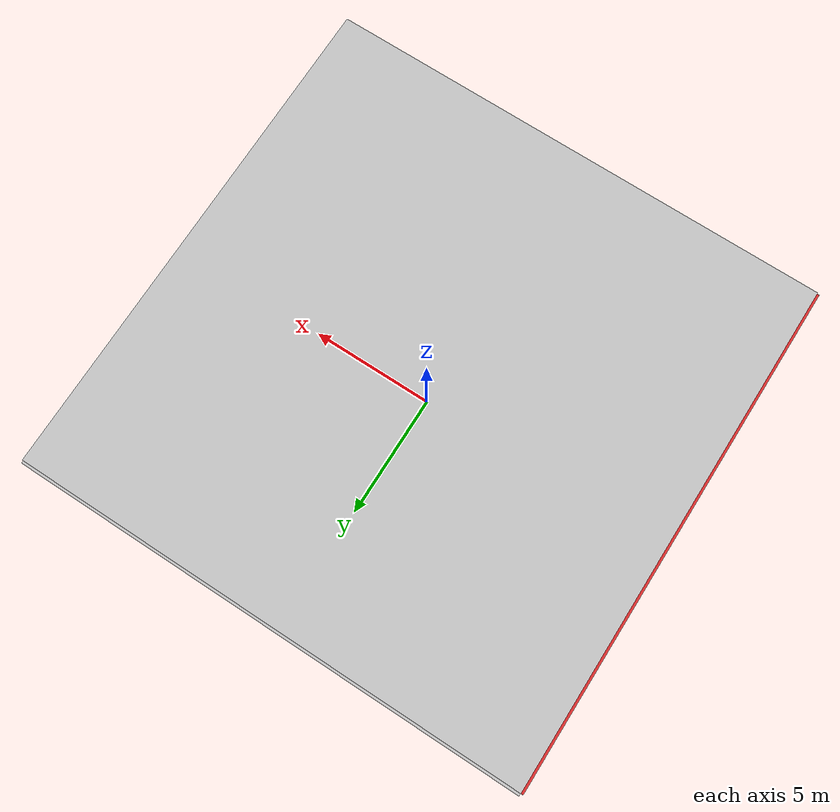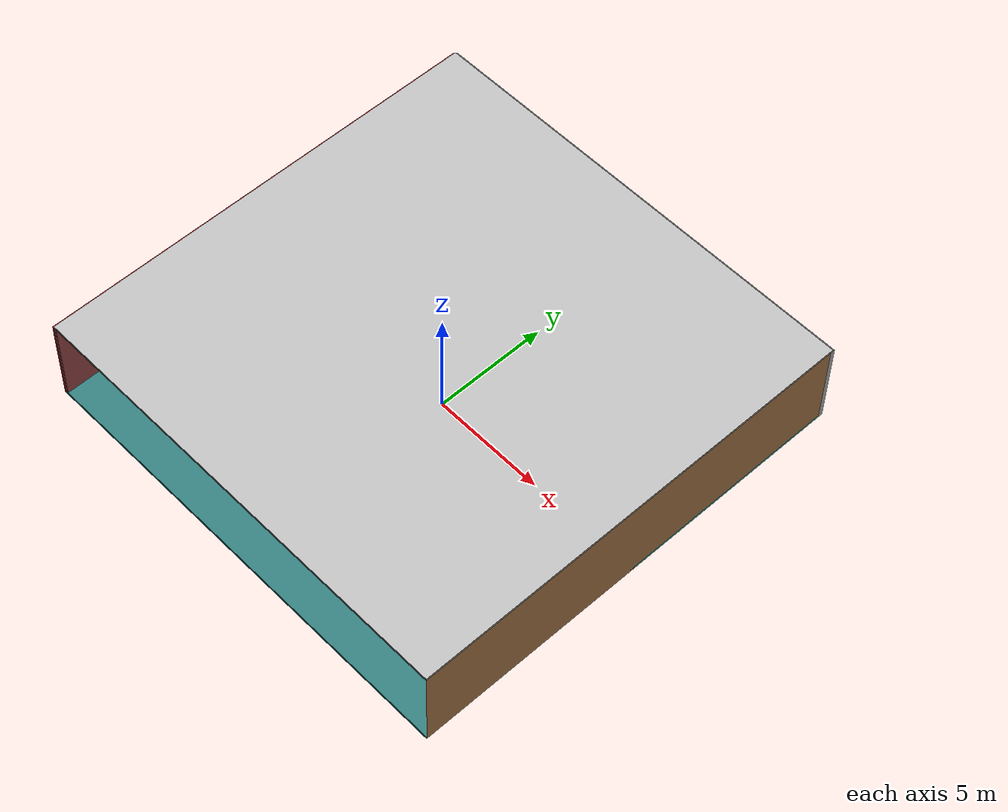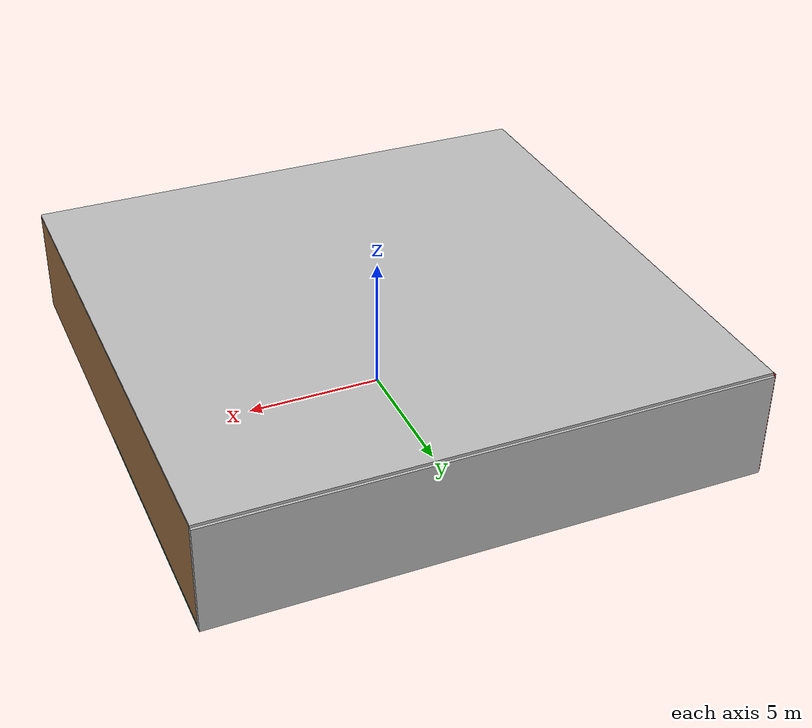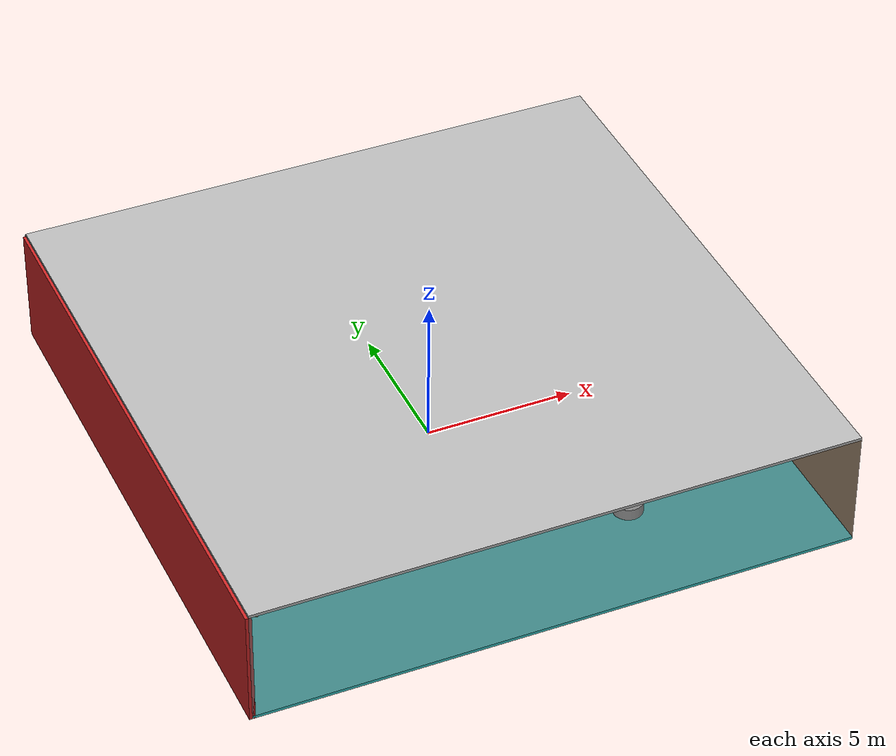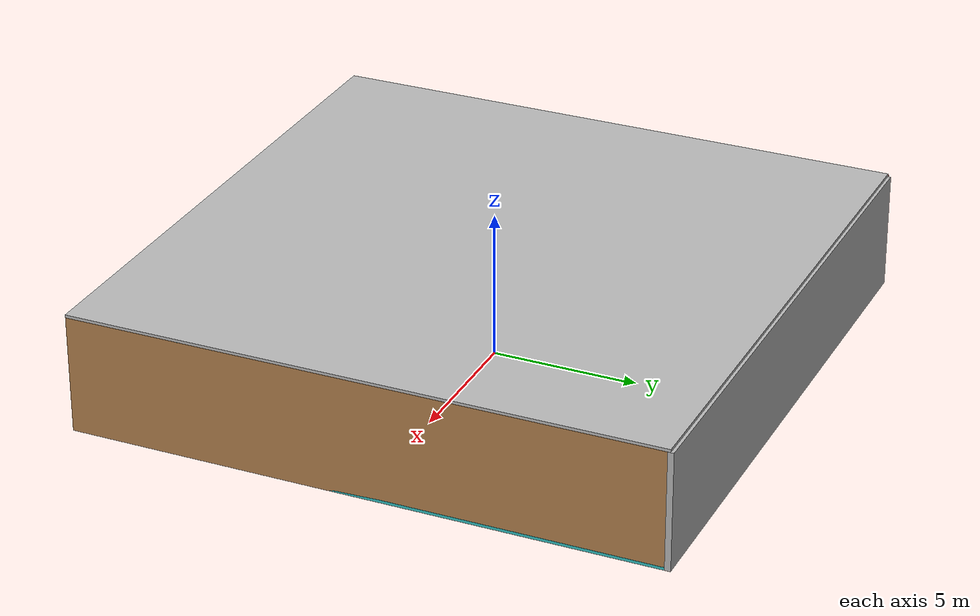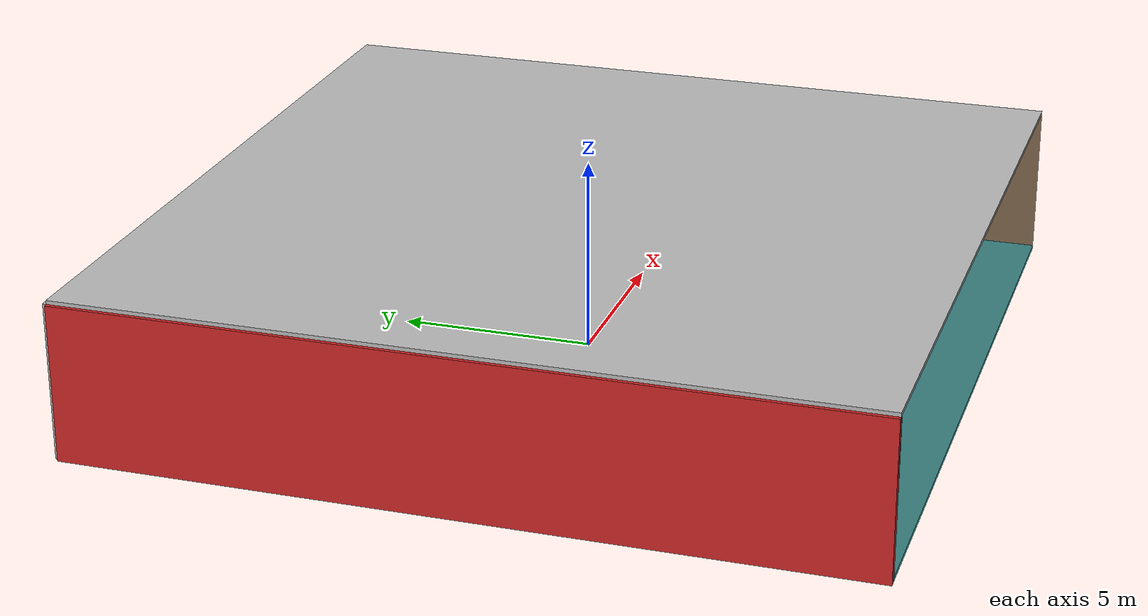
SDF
<sdf version="1.4">
 <world name="default">
  <physics type="ode">
   <max_step_size>0.001</max_step_size>
   <real_time_factor>1</real_time_factor>
   <real_time_update_rate>1000</real_time_update_rate>
   <gravity>0 0 -9.8</gravity>
  </physics>
  <scene><ambient>0.4 0.4 0.4 1</ambient><background>0.7 0.7 0.7 1</background><shadows>1</shadows></scene>
  <model name="Surrounding">
   <static>1</static>
   <link name="Ceiling">
    <collision name="Ceiling_Collision"><geometry><box><size>20 20 0.1</size></box></geometry></collision>
    <visual name="Ceiling_Visual">
     <geometry><box><size>20 20 0.1</size></box></geometry>
     <material>
      <script><uri>file://media/materials/scripts/gazebo.material</uri><name>Gazebo/LightOn</name></script>
     </material>
    </visual>
    <pose>0 0 4.05 0 0 0</pose>
   </link>
   <link name="Wall_South">
    <collision name="Wall_South_Collision">
     <geometry><box><size>20 0 4</size></box></geometry>
     <pose>0 0 2 0 -0 0</pose>
    </collision>
    <visual name="Wall_South_Visual">
     <pose>0 0 2 0 -0 0</pose>
     <geometry><box><size>20 0 4</size></box></geometry>
     <material>
      <script><uri>file://media/materials/scripts/gazebo.material</uri><name>Gazebo/GreyTransparent</name></script>
     </material>
    </visual>
    <velocity_decay><linear>0</linear><angular>0</angular></velocity_decay>
    <pose>0 -10 0 0 -0 0</pose>
   </link>
   <link name="Wall_East">
    <collision name="Wall_21_Collision">
     <geometry><box><size>20 0 4</size></box></geometry>
     <pose>0 0 2 0 -0 0</pose>
    </collision>
    <visual name="Wall_21_Visual">
     <pose>0 0 2 0 -0 0</pose>
     <geometry><box><size>20 0 4</size></box></geometry>
     <material>
      <script><uri>file://media/materials/scripts/gazebo.material</uri><name>Gazebo/Wood</name></script>
     </material>
    </visual>
    <velocity_decay><linear>0</linear><angular>0</angular></velocity_decay>
    <pose>10 0 0 0 -0 1.5708</pose>
   </link>
   <link name="Wall_North">
    <collision name="Wall_22_Collision">
     <geometry><box><size>20 0.2 4</size></box></geometry>
     <pose>0 0 2 0 -0 0</pose>
    </collision>
    <visual name="Wall_22_Visual">
     <pose>0 0 2 0 -0 0</pose>
     <geometry><box><size>20 0.2 4</size></box></geometry>
     <material>
      <script><uri>file://media/materials/scripts/gazebo.material</uri><name>Gazebo/JointAnchor</name></script>
     </material>
    </visual>
    <velocity_decay><linear>0</linear><angular>0</angular></velocity_decay>
    <pose>0 10 0 0 -0 0</pose>
   </link>
   <link name="Wall_West">
    <collision name="Wall_23_Collision">
     <geometry><box><size>20 0.2 4</size></box></geometry>
     <pose>0 0 2 0 -0 0</pose>
    </collision>
    <visual name="Wall_23_Visual">
     <pose>0 0 2 0 -0 0</pose>
     <geometry><box><size>20 0.2 4</size></box></geometry>
     <material>
      <script><uri>file://media/materials/scripts/gazebo.material</uri><name>Gazebo/RedGlow</name></script>
     </material>
    </visual>
    <velocity_decay><linear>0</linear><angular>0</angular></velocity_decay>
    <pose>-10 0 0 0 0 -1.5708</pose>
   </link>
   <link name="Ground_link">
    <collision name="collision">
     <pose>0 0 .05 0 -0 0</pose>
     <geometry><box><size>20 20 0.1</size></box></geometry>
    </collision>
    <visual name="visual">
     <pose>0 0 .05 0 -0 0</pose>
     <geometry><box><size>20 20 0.1</size></box></geometry>
     <material>
      <script><uri>file://media/materials/scripts/gazebo.material</uri><name>Gazebo/TurquoiseGlow</name></script>
     </material>
    </visual>
   </link>
   <static>1</static>
  </model>
  <spherical_coordinates>
   <surface_model>EARTH_WGS84</surface_model>
   <latitude_deg>0</latitude_deg>
   <longitude_deg>0</longitude_deg>
   <elevation>0</elevation>
   <heading_deg>0</heading_deg>
  </spherical_coordinates>
  <light name="lightball_0" type="diffuse">
   <diffuse>0.8 0.8 0.8 1</diffuse>
   <specular>0.2 0.2 0.2 1</specular>
   <attenuation>
    <range>100</range>
    <constant>0.7</constant>
    <linear>0.01</linear>
    <quadratic>0.001</quadratic>
   </attenuation>
   <direction>-0.5 0.1 -0.9</direction>
   <pose>5.62636819706 -5.837250967 1.11624636809 0 0 0</pose>
  </light>
  <light name="lightball_1" type="diffuse">
   <diffuse>0.8 0.8 0.8 1</diffuse>
   <specular>0.2 0.2 0.2 1</specular>
   <attenuation>
    <range>100</range>
    <constant>0.7</constant>
    <linear>0.01</linear>
    <quadratic>0.001</quadratic>
   </attenuation>
   <direction>-0.5 0.1 -0.9</direction>
   <pose>-2.88742028713 -1.7508925562 3.73414804324 0 0 0</pose>
  </light>
  <light name="lightball_2" type="diffuse">
   <diffuse>0.8 0.8 0.8 1</diffuse>
   <specular>0.2 0.2 0.2 1</specular>
   <attenuation>
    <range>100</range>
    <constant>0.7</constant>
    <linear>0.01</linear>
    <quadratic>0.001</quadratic>
   </attenuation>
   <direction>-0.5 0.1 -0.9</direction>
   <pose>7.50162340116 -2.48547958239 2.57246223099 0 0 0</pose>
  </light>
  <light name="lightball_3" type="diffuse">
   <diffuse>0.8 0.8 0.8 1</diffuse>
   <specular>0.2 0.2 0.2 1</specular>
   <attenuation>
    <range>100</range>
    <constant>0.7</constant>
    <linear>0.01</linear>
    <quadratic>0.001</quadratic>
   </attenuation>
   <direction>-0.5 0.1 -0.9</direction>
   <pose>8.51672926823 2.53904514203 3.24264227491 0 0 0</pose>
  </light>
  <light name="lightball_4" type="diffuse">
   <diffuse>0.8 0.8 0.8 1</diffuse>
   <specular>0.2 0.2 0.2 1</specular>
   <attenuation>
    <range>100</range>
    <constant>0.7</constant>
    <linear>0.01</linear>
    <quadratic>0.001</quadratic>
   </attenuation>
   <direction>-0.5 0.1 -0.9</direction>
   <pose>5.94762330556 6.29243176417 3.88495357268 0 0 0</pose>
  </light>
  <light name="lightball_5" type="diffuse">
   <diffuse>0.8 0.8 0.8 1</diffuse>
   <specular>0.2 0.2 0.2 1</specular>
   <attenuation>
    <range>100</range>
    <constant>0.7</constant>
    <linear>0.01</linear>
    <quadratic>0.001</quadratic>
   </attenuation>
   <direction>-0.5 0.1 -0.9</direction>
   <pose>-0.800175357091 -6.74974832357 3.35690313164 0 0 0</pose>
  </light>
  <light name="lightball_6" type="diffuse">
   <diffuse>0.8 0.8 0.8 1</diffuse>
   <specular>0.2 0.2 0.2 1</specular>
   <attenuation>
    <range>100</range>
    <constant>0.7</constant>
    <linear>0.01</linear>
    <quadratic>0.001</quadratic>
   </attenuation>
   <direction>-0.5 0.1 -0.9</direction>
   <pose>5.92575742899 -4.74646127446 2.05636161145 0 0 0</pose>
  </light>
  <light name="lightball_7" type="diffuse">
   <diffuse>0.8 0.8 0.8 1</diffuse>
   <specular>0.2 0.2 0.2 1</specular>
   <attenuation>
    <range>100</range>
    <constant>0.7</constant>
    <linear>0.01</linear>
    <quadratic>0.001</quadratic>
   </attenuation>
   <direction>-0.5 0.1 -0.9</direction>
   <pose>5.06751963969 9.33274266191 3.77014540065 0 0 0</pose>
  </light>
  <light name="lightball_8" type="diffuse">
   <diffuse>0.8 0.8 0.8 1</diffuse>
   <specular>0.2 0.2 0.2 1</specular>
   <attenuation>
    <range>100</range>
    <constant>0.7</constant>
    <linear>0.01</linear>
    <quadratic>0.001</quadratic>
   </attenuation>
   <direction>-0.5 0.1 -0.9</direction>
   <pose>8.45145128566 -9.88976228183 2.64156046146 0 0 0</pose>
  </light>
  <light name="lightball_9" type="diffuse">
   <diffuse>0.8 0.8 0.8 1</diffuse>
   <specular>0.2 0.2 0.2 1</specular>
   <attenuation>
    <range>100</range>
    <constant>0.7</constant>
    <linear>0.01</linear>
    <quadratic>0.001</quadratic>
   </attenuation>
   <direction>-0.5 0.1 -0.9</direction>
   <pose>5.00861552702 -1.5533678486 2.00594774446 0 0 0</pose>
  </light>
  <light name="lightball_10" type="diffuse">
   <diffuse>0.8 0.8 0.8 1</diffuse>
   <specular>0.2 0.2 0.2 1</specular>
   <attenuation>
    <range>100</range>
    <constant>0.7</constant>
    <linear>0.01</linear>
    <quadratic>0.001</quadratic>
   </attenuation>
   <direction>-0.5 0.1 -0.9</direction>
   <pose>-5.05503103064 -9.74170756869 1.75266770832 0 0 0</pose>
  </light>
  <light name="lightball_11" type="diffuse">
   <diffuse>0.8 0.8 0.8 1</diffuse>
   <specular>0.2 0.2 0.2 1</specular>
   <attenuation>
    <range>100</range>
    <constant>0.7</constant>
    <linear>0.01</linear>
    <quadratic>0.001</quadratic>
   </attenuation>
   <direction>-0.5 0.1 -0.9</direction>
   <pose>2.33571657237 -8.03946981258 2.23538888702 0 0 0</pose>
  </light>
  <light name="lightball_12" type="diffuse">
   <diffuse>0.8 0.8 0.8 1</diffuse>
   <specular>0.2 0.2 0.2 1</specular>
   <attenuation>
    <range>100</range>
    <constant>0.7</constant>
    <linear>0.01</linear>
    <quadratic>0.001</quadratic>
   </attenuation>
   <direction>-0.5 0.1 -0.9</direction>
   <pose>4.31521103858 7.57958746842 1.43414037012 0 0 0</pose>
  </light>
  <include>
   <uri>model://robocup_3Dsim_goal</uri>
   <pose>-8.14358596772 -4.96427292893 0 0 0 2.98698966605</pose>
  </include>
  <include>
   <uri>model://textured_shapes</uri>
   <pose>-6.91627048994 7.85421959619 0 0 0 1.40698549261</pose>
  </include>
  <include>
   <uri>model://textured_shapes</uri>
   <pose>4.87174877693 -4.75103764194 0 0 0 2.64470788415</pose>
  </include>
 </world>
</sdf>

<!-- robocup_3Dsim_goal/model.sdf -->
<sdf version="1.5">
  <model name="robocup_3d_goal">
    <static>true</static>
    <link name="left_post">
      <pose>0 1.05 0.45 0 0 0</pose>
      <collision name="collision">
        <geometry>
          <cylinder>
            <radius>0.05</radius>
            <length>0.9</length>
          </cylinder>
        </geometry>
      </collision>
      <visual name="visual">
        <geometry>
          <cylinder>
            <radius>0.05</radius>
            <length>0.9</length>
          </cylinder>
        </geometry>
        <material>
          <script>
            <uri>file://media/materials/scripts/gazebo.material</uri>
            <name>Gazebo/ZincYellow</name>
          </script>
        </material>
      </visual>
    </link>
    <link name="left_support_horiz_lower">
      <pose>0.30 1.05 0.01 0 0 0</pose>
      <collision name="collision">
        <geometry>
          <box>
            <size>0.50 0.02 0.02</size>
          </box>
        </geometry>
      </collision>
      <visual name="visual">
        <geometry>
          <box>
            <size>0.50 0.02 0.02</size>
          </box>
        </geometry>
        <material>
          <script>
            <uri>file://media/materials/scripts/gazebo.material</uri>
            <name>Gazebo/White</name>
          </script>
        </material>
      </visual>
    </link>
    <link name="left_support_horiz_upper">
      <pose>0.30 1.05 0.79 0 0 0</pose>
      <collision name="collision">
        <geometry>
          <box>
            <size>0.50 0.02 0.02</size>
          </box>
        </geometry>
      </collision>
      <visual name="visual">
        <geometry>
          <box>
            <size>0.50 0.02 0.02</size>
          </box>
        </geometry>
        <material>
          <script>
            <uri>file://media/materials/scripts/gazebo.material</uri>
            <name>Gazebo/White</name>
          </script>
        </material>
      </visual>
    </link>
    <link name="left_support_vertical">
      <pose>0.56 1.05 0.4 0 1.5708 0</pose>
      <collision name="collision">
        <geometry>
          <box>
            <size>0.80 0.02 0.02</size>
          </box>
        </geometry>
      </collision>
      <visual name="visual">
        <geometry>
          <box>
            <size>0.80 0.02 0.02</size>
          </box>
        </geometry>
        <material>
          <script>
            <uri>file://media/materials/scripts/gazebo.material</uri>
            <name>Gazebo/White</name>
          </script>
        </material>
      </visual>
    </link>
    <link name="right_support_horiz_lower">
      <pose>0.30 -1.05 0.01 0 0 0</pose>
      <collision name="collision">
        <geometry>
          <box>
            <size>0.50 0.02 0.02</size>
          </box>
        </geometry>
      </collision>
      <visual name="visual">
        <geometry>
          <box>
            <size>0.50 0.02 0.02</size>
          </box>
        </geometry>
        <material>
          <script>
            <uri>file://media/materials/scripts/gazebo.material</uri>
            <name>Gazebo/White</name>
          </script>
        </material>
      </visual>
    </link>
    <link name="right_support_horiz_upper">
      <pose>0.30 -1.05 0.79 0 0 0</pose>
      <collision name="collision">
        <geometry>
          <box>
            <size>0.50 0.02 0.02</size>
          </box>
        </geometry>
      </collision>
      <visual name="visual">
        <geometry>
          <box>
            <size>0.50 0.02 0.02</size>
          </box>
        </geometry>
        <material>
          <script>
            <uri>file://media/materials/scripts/gazebo.material</uri>
            <name>Gazebo/White</name>
          </script>
        </material>
      </visual>
    </link>
    <link name="right_support_vertical">
      <pose>0.56 -1.05 0.4 0 1.5708 0</pose>
      <collision name="collision">
        <geometry>
          <box>
            <size>0.80 0.02 0.02</size>
          </box>
        </geometry>
      </collision>
      <visual name="visual">
        <geometry>
          <box>
            <size>0.80 0.02 0.02</size>
          </box>
        </geometry>
        <material>
          <script>
            <uri>file://media/materials/scripts/gazebo.material</uri>
            <name>Gazebo/White</name>
          </script>
        </material>
      </visual>
    </link>
    <link name="center_support_horiz_lower">
      <pose>0.56 0 0.01 0 1.5708 0</pose>
      <collision name="collision">
        <geometry>
          <box>
            <size>0.02 2.08 0.02</size>
          </box>
        </geometry>
      </collision>
      <visual name="visual">
        <geometry>
          <box>
            <size>0.02 2.08 0.02</size>
          </box>
        </geometry>
        <material>
          <script>
            <uri>file://media/materials/scripts/gazebo.material</uri>
            <name>Gazebo/White</name>
          </script>
        </material>
      </visual>
    </link>
    <link name="center_support_horiz_upper">
      <pose>0.56 0 0.79 0 1.5708 0</pose>
      <collision name="collision">
        <geometry>
          <box>
            <size>0.02 2.08 0.02</size>
          </box>
        </geometry>
      </collision>
      <visual name="visual">
        <geometry>
          <box>
            <size>0.02 2.08 0.02</size>
          </box>
        </geometry>
        <material>
          <script>
            <uri>file://media/materials/scripts/gazebo.material</uri>
            <name>Gazebo/White</name>
          </script>
        </material>
      </visual>
    </link>
    <link name="right_post">
      <pose>0 -1.05 0.45 0 0 0</pose>
      <collision name="collision">
        <geometry>
          <cylinder>
            <radius>0.05</radius>
            <length>0.9</length>
          </cylinder>
        </geometry>
      </collision>
      <visual name="visual">
        <geometry>
          <cylinder>
            <radius>0.05</radius>
            <length>0.9</length>
          </cylinder>
        </geometry>
        <material>
          <script>
            <uri>file://media/materials/scripts/gazebo.material</uri>
            <name>Gazebo/ZincYellow</name>
          </script>
        </material>
      </visual>
    </link>
    <link name="crossbar">
      <pose>0 0 0.85 1.57 1.57 0</pose>
      <collision name="collision">
        <geometry>
          <cylinder>
            <radius>0.05</radius>
            <length>2.0</length>
          </cylinder>
        </geometry>
      </collision>
      <visual name="visual">
        <geometry>
          <cylinder>
            <radius>0.05</radius>
            <length>2.0</length>
          </cylinder>
        </geometry>
        <material>
          <script>
            <uri>file://media/materials/scripts/gazebo.material</uri>
            <name>Gazebo/ZincYellow</name>
          </script>
        </material>
      </visual>
    </link>
    <link name="center_net">
      <pose>0.56 0 0.40 0 0 0</pose>
      <collision name="collision">
        <geometry>
          <box>
            <size>0.01 2.1 0.80</size>
          </box>
        </geometry>
      </collision>
      <visual name="visual">
        <geometry>
          <box>
            <size>0.01 2.1 0.80</size>
          </box>
        </geometry>
        <material>
          <script>
            <uri>model://../model_source/models/robocup09_spl_field/materials/scripts/</uri>
            <uri>model://../model_source/models/robocup09_spl_field/materials/textures/</uri>
            <name>RoboCup/Net</name>
          </script>
        </material>
      </visual>
    </link>
    <link name="left_net">
      <pose>0.30 1.05 0.40 0 0 0</pose>
      <collision name="collision">
        <geometry>
          <box>
            <size>0.50 0.01 0.76</size>
          </box>
        </geometry>
      </collision>
      <visual name="visual">
        <geometry>
          <box>
            <size>0.50 0.01 0.76</size>
          </box>
        </geometry>
        <material>
          <script>
            <uri>model://../model_source/models/robocup09_spl_field/materials/scripts/</uri>
            <uri>model://../model_source/models/robocup09_spl_field/materials/textures/</uri>
            <name>RoboCup/Net</name>
          </script>
        </material>
      </visual>
    </link>
    <link name="right_net">
      <pose>0.30 -1.05 0.40 0 0 0</pose>
      <collision name="collision">
        <geometry>
          <box>
            <size>0.50 0.01 0.76</size>
          </box>
        </geometry>
      </collision>
      <visual name="visual">
        <geometry>
          <box>
            <size>0.50 0.01 0.76</size>
          </box>
        </geometry>
        <material>
          <script>
            <uri>model://../model_source/models/robocup09_spl_field/materials/scripts/</uri>
            <uri>model://../model_source/models/robocup09_spl_field/materials/textures/</uri>
            <name>RoboCup/Net</name>
          </script>
        </material>
      </visual>
    </link>
  </model>
</sdf>

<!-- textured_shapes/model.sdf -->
<sdf version="1.6">
  <model name="textured_shapes">
    <pose>0 0 0.5 0 0 0</pose>
    <link name="box">
      <pose>0 -1.5 0 0 0 0</pose>
      <collision name="collision">
        <geometry>
          <box>
            <size>1 1 1</size>
          </box>
        </geometry>
      </collision>
      <visual name="visual">
        <geometry>
          <box>
            <size>1 1 1</size>
          </box>
        </geometry>
        <material>
          <script>
            <uri>model://../model_source/models/textured_shapes/materials/scripts</uri>
            <uri>model://../model_source/models/textured_shapes/materials/textures</uri>
            <name>TexturedShape/Squares</name>
          </script>
        </material>
      </visual>
    </link>
    <link name="sphere">
      <collision name="collision">
        <geometry>
          <sphere>
            <radius>0.5</radius>
          </sphere>
        </geometry>
      </collision>
      <visual name="visual">
        <geometry>
          <sphere>
            <radius>0.5</radius>
          </sphere>
        </geometry>
        <material>
          <script>
            <uri>model://../model_source/models/textured_shapes/materials/scripts</uri>
            <uri>model://../model_source/models/textured_shapes/materials/textures</uri>
            <name>TexturedShape/Squares</name>
          </script>
        </material>
      </visual>
    </link>
    <link name="cylinder">
      <pose>0 1.5 0 0 0 0</pose>
      <collision name="collision">
        <geometry>
          <cylinder>
            <radius>0.5</radius>
            <length>1</length>
          </cylinder>
        </geometry>
      </collision>
      <visual name="visual">
        <geometry>
          <cylinder>
            <radius>0.5</radius>
            <length>1</length>
          </cylinder>
        </geometry>
        <material>
          <script>
            <uri>model://../model_source/models/textured_shapes/materials/scripts</uri>
            <uri>model://../model_source/models/textured_shapes/materials/textures</uri>
            <name>TexturedShape/Squares</name>
          </script>
        </material>
      </visual>
    </link>
  </model>
</sdf>
